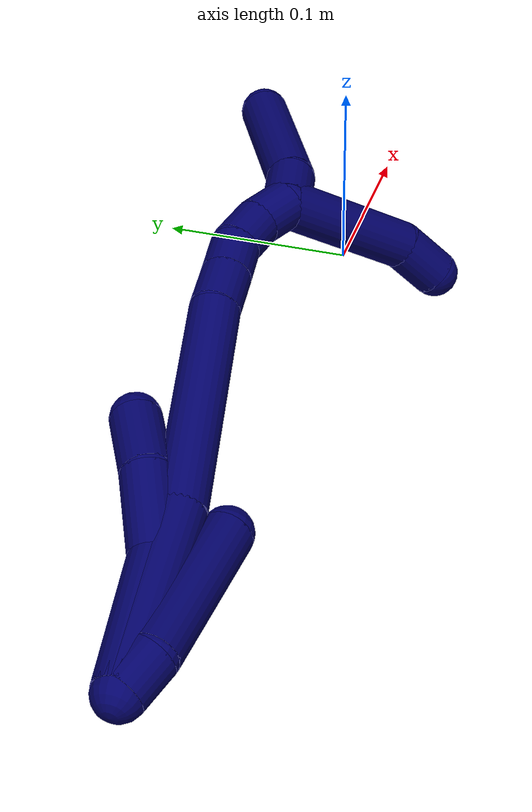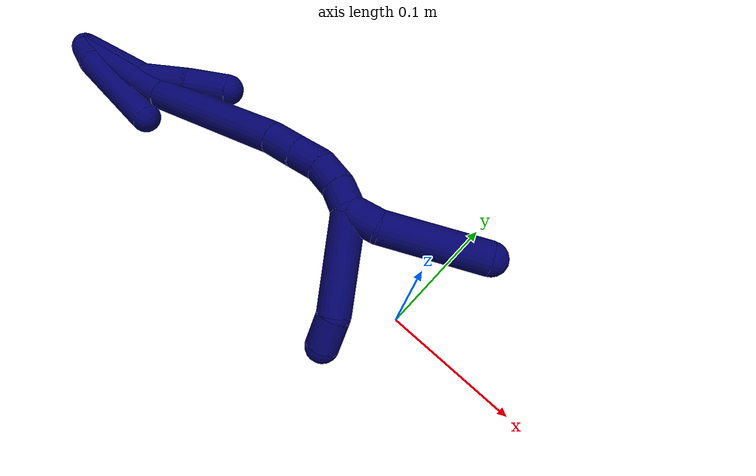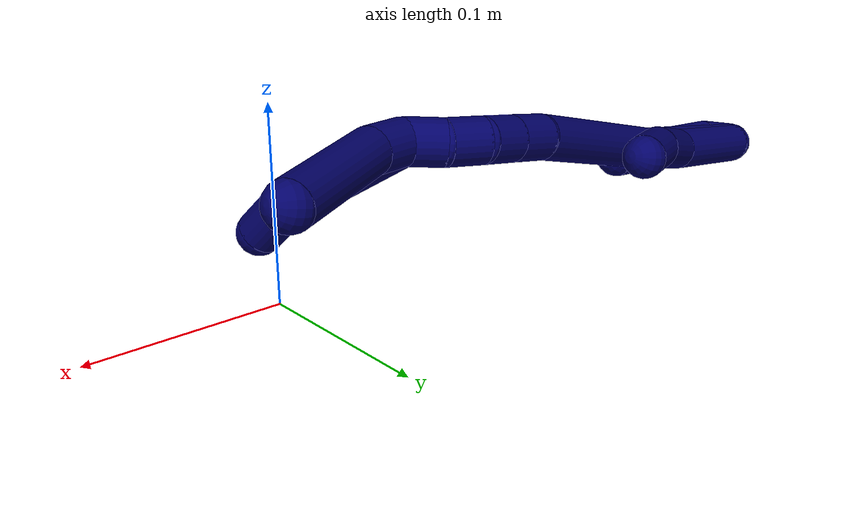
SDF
<sdf version="1.7">
 <world name="default">
  <model name="7">
   <static>0</static>
   <link name="7">
    <collision name="collision-cylinder-e_1_2_8">
     <pose>0.004215 0.001929 -0.034962 -3.08649 0.119792 -2.27999</pose>
     <geometry><cylinder><radius>0.0125</radius><length>0.070535</length></cylinder></geometry>
     <surface>
      <friction><ode><mu>1.16</mu><mu2>1.16</mu2><slip1>0</slip1><slip2>0</slip2></ode></friction>
      <contact><ode><kp>1e+06</kp><kd>1</kd><max_vel>0</max_vel><min_depth>0.001</min_depth></ode></contact>
     </surface>
    </collision>
    <visual name="visual-cylinder-e_1_2_8">
     <pose>0.004215 0.001929 -0.034962 -3.08649 0.119792 -2.27999</pose>
     <geometry><cylinder><radius>0.0125</radius><length>0.070535</length></cylinder></geometry>
     <material><ambient>0.003922 0 0.403922 1</ambient></material>
    </visual>
    <collision name="collision-cylinder-e_2_8_9">
     <pose>0.017588 0.002914 -0.090334 3.09543 0.421384 2.92652</pose>
     <geometry><cylinder><radius>0.0125</radius><length>0.044782</length></cylinder></geometry>
     <surface>
      <friction><ode><mu>1.16</mu><mu2>1.16</mu2><slip1>0</slip1><slip2>0</slip2></ode></friction>
      <contact><ode><kp>1e+06</kp><kd>1</kd><max_vel>0</max_vel><min_depth>0.001</min_depth></ode></contact>
     </surface>
    </collision>
    <visual name="visual-cylinder-e_2_8_9">
     <pose>0.017588 0.002914 -0.090334 3.09543 0.421384 2.92652</pose>
     <geometry><cylinder><radius>0.0125</radius><length>0.044782</length></cylinder></geometry>
     <material><ambient>0.003922 0 0.403922 1</ambient></material>
    </visual>
    <collision name="collision-cylinder-e_3_9_6">
     <pose>0.034594 0.003999 -0.126074 -3.01006 0.469644 -2.60431</pose>
     <geometry><cylinder><radius>0.0125</radius><length>0.034683</length></cylinder></geometry>
     <surface>
      <friction><ode><mu>1.16</mu><mu2>1.16</mu2><slip1>0</slip1><slip2>0</slip2></ode></friction>
      <contact><ode><kp>1e+06</kp><kd>1</kd><max_vel>0</max_vel><min_depth>0.001</min_depth></ode></contact>
     </surface>
    </collision>
    <visual name="visual-cylinder-e_3_9_6">
     <pose>0.034594 0.003999 -0.126074 -3.01006 0.469644 -2.60431</pose>
     <geometry><cylinder><radius>0.0125</radius><length>0.034683</length></cylinder></geometry>
     <material><ambient>0.003922 0 0.403922 1</ambient></material>
    </visual>
    <collision name="collision-cylinder-e_1_2_10">
     <pose>-0.003509 -0.000524 -0.010418 3.09136 -0.324531 -2.83706</pose>
     <geometry><cylinder><radius>0.0125</radius><length>0.022011</length></cylinder></geometry>
     <surface>
      <friction><ode><mu>1.16</mu><mu2>1.16</mu2><slip1>0</slip1><slip2>0</slip2></ode></friction>
      <contact><ode><kp>1e+06</kp><kd>1</kd><max_vel>0</max_vel><min_depth>0.001</min_depth></ode></contact>
     </surface>
    </collision>
    <visual name="visual-cylinder-e_1_2_10">
     <pose>-0.003509 -0.000524 -0.010418 3.09136 -0.324531 -2.83706</pose>
     <geometry><cylinder><radius>0.0125</radius><length>0.022011</length></cylinder></geometry>
     <material><ambient>0.003922 0 0.403922 1</ambient></material>
    </visual>
    <collision name="collision-cylinder-e_2_10_5">
     <pose>-0.011336 0.00482 -0.059144 -2.9896 -0.110941 1.26019</pose>
     <geometry><cylinder><radius>0.0125</radius><length>0.077989</length></cylinder></geometry>
     <surface>
      <friction><ode><mu>1.16</mu><mu2>1.16</mu2><slip1>0</slip1><slip2>0</slip2></ode></friction>
      <contact><ode><kp>1e+06</kp><kd>1</kd><max_vel>0</max_vel><min_depth>0.001</min_depth></ode></contact>
     </surface>
    </collision>
    <visual name="visual-cylinder-e_2_10_5">
     <pose>-0.011336 0.00482 -0.059144 -2.9896 -0.110941 1.26019</pose>
     <geometry><cylinder><radius>0.0125</radius><length>0.077989</length></cylinder></geometry>
     <material><ambient>0.003922 0 0.403922 1</ambient></material>
    </visual>
    <collision name="collision-cylinder-e_1_2_11">
     <pose>0.003193 0.001871 -0.04864 -3.10314 0.065497 -2.08005</pose>
     <geometry><cylinder><radius>0.0125</radius><length>0.09756</length></cylinder></geometry>
     <surface>
      <friction><ode><mu>1.16</mu><mu2>1.16</mu2><slip1>0</slip1><slip2>0</slip2></ode></friction>
      <contact><ode><kp>1e+06</kp><kd>1</kd><max_vel>0</max_vel><min_depth>0.001</min_depth></ode></contact>
     </surface>
    </collision>
    <visual name="visual-cylinder-e_1_2_11">
     <pose>0.003193 0.001871 -0.04864 -3.10314 0.065497 -2.08005</pose>
     <geometry><cylinder><radius>0.0125</radius><length>0.09756</length></cylinder></geometry>
     <material><ambient>0.003922 0 0.403922 1</ambient></material>
    </visual>
    <collision name="collision-cylinder-e_2_11_12">
     <pose>0.016607 0.000204 -0.153598 3.07884 0.17919 2.46933</pose>
     <geometry><cylinder><radius>0.0125</radius><length>0.114696</length></cylinder></geometry>
     <surface>
      <friction><ode><mu>1.16</mu><mu2>1.16</mu2><slip1>0</slip1><slip2>0</slip2></ode></friction>
      <contact><ode><kp>1e+06</kp><kd>1</kd><max_vel>0</max_vel><min_depth>0.001</min_depth></ode></contact>
     </surface>
    </collision>
    <visual name="visual-cylinder-e_2_11_12">
     <pose>0.016607 0.000204 -0.153598 3.07884 0.17919 2.46933</pose>
     <geometry><cylinder><radius>0.0125</radius><length>0.114696</length></cylinder></geometry>
     <material><ambient>0.003922 0 0.403922 1</ambient></material>
    </visual>
    <collision name="collision-cylinder-e_3_12_13">
     <pose>0.027739 -0.002871 -0.22172 -3.10229 0.077008 -2.19814</pose>
     <geometry><cylinder><radius>0.0125</radius><length>0.023695</length></cylinder></geometry>
     <surface>
      <friction><ode><mu>1.16</mu><mu2>1.16</mu2><slip1>0</slip1><slip2>0</slip2></ode></friction>
      <contact><ode><kp>1e+06</kp><kd>1</kd><max_vel>0</max_vel><min_depth>0.001</min_depth></ode></contact>
     </surface>
    </collision>
    <visual name="visual-cylinder-e_3_12_13">
     <pose>0.027739 -0.002871 -0.22172 -3.10229 0.077008 -2.19814</pose>
     <geometry><cylinder><radius>0.0125</radius><length>0.023695</length></cylinder></geometry>
     <material><ambient>0.003922 0 0.403922 1</ambient></material>
    </visual>
    <collision name="collision-cylinder-e_4_13_14">
     <pose>0.029634 -0.001941 -0.24432 -3.09843 0.090737 -2.25401</pose>
     <geometry><cylinder><radius>0.0125</radius><length>0.021703</length></cylinder></geometry>
     <surface>
      <friction><ode><mu>1.16</mu><mu2>1.16</mu2><slip1>0</slip1><slip2>0</slip2></ode></friction>
      <contact><ode><kp>1e+06</kp><kd>1</kd><max_vel>0</max_vel><min_depth>0.001</min_depth></ode></contact>
     </surface>
    </collision>
    <visual name="visual-cylinder-e_4_13_14">
     <pose>0.029634 -0.001941 -0.24432 -3.09843 0.090737 -2.25401</pose>
     <geometry><cylinder><radius>0.0125</radius><length>0.021703</length></cylinder></geometry>
     <material><ambient>0.003922 0 0.403922 1</ambient></material>
    </visual>
    <collision name="collision-cylinder-e_5_14_15">
     <pose>0.028129 -0.00062 -0.265585 -3.06015 -0.232618 2.4705</pose>
     <geometry><cylinder><radius>0.0125</radius><length>0.021588</length></cylinder></geometry>
     <surface>
      <friction><ode><mu>1.16</mu><mu2>1.16</mu2><slip1>0</slip1><slip2>0</slip2></ode></friction>
      <contact><ode><kp>1e+06</kp><kd>1</kd><max_vel>0</max_vel><min_depth>0.001</min_depth></ode></contact>
     </surface>
    </collision>
    <visual name="visual-cylinder-e_5_14_15">
     <pose>0.028129 -0.00062 -0.265585 -3.06015 -0.232618 2.4705</pose>
     <geometry><cylinder><radius>0.0125</radius><length>0.021588</length></cylinder></geometry>
     <material><ambient>0.003922 0 0.403922 1</ambient></material>
    </visual>
    <collision name="collision-cylinder-e_6_15_1">
     <pose>0.020625 0.000434 -0.285138 -3.11965 -0.504357 3.05647</pose>
     <geometry><cylinder><radius>0.0125</radius><length>0.020758</length></cylinder></geometry>
     <surface>
      <friction><ode><mu>1.16</mu><mu2>1.16</mu2><slip1>0</slip1><slip2>0</slip2></ode></friction>
      <contact><ode><kp>1e+06</kp><kd>1</kd><max_vel>0</max_vel><min_depth>0.001</min_depth></ode></contact>
     </surface>
    </collision>
    <visual name="visual-cylinder-e_6_15_1">
     <pose>0.020625 0.000434 -0.285138 -3.11965 -0.504357 3.05647</pose>
     <geometry><cylinder><radius>0.0125</radius><length>0.020758</length></cylinder></geometry>
     <material><ambient>0.003922 0 0.403922 1</ambient></material>
    </visual>
    <collision name="collision-cylinder-e_1_1_16">
     <pose>-0.012955 0.019176 -0.308536 -2.22819 -0.883935 1.53315</pose>
     <geometry><cylinder><radius>0.0125</radius><length>0.073883</length></cylinder></geometry>
     <surface>
      <friction><ode><mu>1.16</mu><mu2>1.16</mu2><slip1>0</slip1><slip2>0</slip2></ode></friction>
      <contact><ode><kp>1e+06</kp><kd>1</kd><max_vel>0</max_vel><min_depth>0.001</min_depth></ode></contact>
     </surface>
    </collision>
    <visual name="visual-cylinder-e_1_1_16">
     <pose>-0.012955 0.019176 -0.308536 -2.22819 -0.883935 1.53315</pose>
     <geometry><cylinder><radius>0.0125</radius><length>0.073883</length></cylinder></geometry>
     <material><ambient>0.003922 0 0.403922 1</ambient></material>
    </visual>
    <collision name="collision-cylinder-e_2_16_4">
     <pose>-0.051381 0.04618 -0.324154 -1.72361 -0.855875 0.97746</pose>
     <geometry><cylinder><radius>0.0125</radius><length>0.026117</length></cylinder></geometry>
     <surface>
      <friction><ode><mu>1.16</mu><mu2>1.16</mu2><slip1>0</slip1><slip2>0</slip2></ode></friction>
      <contact><ode><kp>1e+06</kp><kd>1</kd><max_vel>0</max_vel><min_depth>0.001</min_depth></ode></contact>
     </surface>
    </collision>
    <visual name="visual-cylinder-e_2_16_4">
     <pose>-0.051381 0.04618 -0.324154 -1.72361 -0.855875 0.97746</pose>
     <geometry><cylinder><radius>0.0125</radius><length>0.026117</length></cylinder></geometry>
     <material><ambient>0.003922 0 0.403922 1</ambient></material>
    </visual>
    <collision name="collision-cylinder-e_1_1_17">
     <pose>0.017669 0.00282 -0.305678 -2.953 0.174734 -1.49412</pose>
     <geometry><cylinder><radius>0.0125</radius><length>0.023687</length></cylinder></geometry>
     <surface>
      <friction><ode><mu>1.16</mu><mu2>1.16</mu2><slip1>0</slip1><slip2>0</slip2></ode></friction>
      <contact><ode><kp>1e+06</kp><kd>1</kd><max_vel>0</max_vel><min_depth>0.001</min_depth></ode></contact>
     </surface>
    </collision>
    <visual name="visual-cylinder-e_1_1_17">
     <pose>0.017669 0.00282 -0.305678 -2.953 0.174734 -1.49412</pose>
     <geometry><cylinder><radius>0.0125</radius><length>0.023687</length></cylinder></geometry>
     <material><ambient>0.003922 0 0.403922 1</ambient></material>
    </visual>
    <collision name="collision-cylinder-e_2_17_3">
     <pose>0.036115 0.015166 -0.350061 -2.84232 0.443916 -1.96367</pose>
     <geometry><cylinder><radius>0.0125</radius><length>0.076313</length></cylinder></geometry>
     <surface>
      <friction><ode><mu>1.16</mu><mu2>1.16</mu2><slip1>0</slip1><slip2>0</slip2></ode></friction>
      <contact><ode><kp>1e+06</kp><kd>1</kd><max_vel>0</max_vel><min_depth>0.001</min_depth></ode></contact>
     </surface>
    </collision>
    <visual name="visual-cylinder-e_2_17_3">
     <pose>0.036115 0.015166 -0.350061 -2.84232 0.443916 -1.96367</pose>
     <geometry><cylinder><radius>0.0125</radius><length>0.076313</length></cylinder></geometry>
     <material><ambient>0.003922 0 0.403922 1</ambient></material>
    </visual>
    <collision name="collision-sphere-3">
     <pose>0.052503 0.025325 -0.382988 0 -0 0</pose>
     <geometry><sphere><radius>0.0125</radius></sphere></geometry>
     <surface>
      <friction><ode><mu>1.16</mu><mu2>1.16</mu2><slip1>0</slip1><slip2>0</slip2></ode></friction>
      <contact><ode><kp>1e+06</kp><kd>1</kd><max_vel>0</max_vel><min_depth>0.001</min_depth></ode></contact>
     </surface>
    </collision>
    <visual name="visual-sphere-3">
     <pose>0.052503 0.025325 -0.382988 0 -0 0</pose>
     <geometry><sphere><radius>0.0125</radius></sphere></geometry>
     <material><ambient>0.003922 0 0.403922 1</ambient></material>
    </visual>
    <collision name="collision-sphere-17">
     <pose>0.019728 0.005006 -0.317135 0 -0 0</pose>
     <geometry><sphere><radius>0.0125</radius></sphere></geometry>
     <surface>
      <friction><ode><mu>1.16</mu><mu2>1.16</mu2><slip1>0</slip1><slip2>0</slip2></ode></friction>
      <contact><ode><kp>1e+06</kp><kd>1</kd><max_vel>0</max_vel><min_depth>0.001</min_depth></ode></contact>
     </surface>
    </collision>
    <visual name="visual-sphere-17">
     <pose>0.019728 0.005006 -0.317135 0 -0 0</pose>
     <geometry><sphere><radius>0.0125</radius></sphere></geometry>
     <material><ambient>0.003922 0 0.403922 1</ambient></material>
    </visual>
    <collision name="collision-sphere-4">
     <pose>-0.061242 0.054641 -0.325457 0 -0 0</pose>
     <geometry><sphere><radius>0.0125</radius></sphere></geometry>
     <surface>
      <friction><ode><mu>1.16</mu><mu2>1.16</mu2><slip1>0</slip1><slip2>0</slip2></ode></friction>
      <contact><ode><kp>1e+06</kp><kd>1</kd><max_vel>0</max_vel><min_depth>0.001</min_depth></ode></contact>
     </surface>
    </collision>
    <visual name="visual-sphere-4">
     <pose>-0.061242 0.054641 -0.325457 0 -0 0</pose>
     <geometry><sphere><radius>0.0125</radius></sphere></geometry>
     <material><ambient>0.003922 0 0.403922 1</ambient></material>
    </visual>
    <collision name="collision-sphere-16">
     <pose>-0.04152 0.037719 -0.322851 0 -0 0</pose>
     <geometry><sphere><radius>0.0125</radius></sphere></geometry>
     <surface>
      <friction><ode><mu>1.16</mu><mu2>1.16</mu2><slip1>0</slip1><slip2>0</slip2></ode></friction>
      <contact><ode><kp>1e+06</kp><kd>1</kd><max_vel>0</max_vel><min_depth>0.001</min_depth></ode></contact>
     </surface>
    </collision>
    <visual name="visual-sphere-16">
     <pose>-0.04152 0.037719 -0.322851 0 -0 0</pose>
     <geometry><sphere><radius>0.0125</radius></sphere></geometry>
     <material><ambient>0.003922 0 0.403922 1</ambient></material>
    </visual>
    <collision name="collision-sphere-1">
     <pose>0.01561 0.000633 -0.294222 0 -0 0</pose>
     <geometry><sphere><radius>0.0125</radius></sphere></geometry>
     <surface>
      <friction><ode><mu>1.16</mu><mu2>1.16</mu2><slip1>0</slip1><slip2>0</slip2></ode></friction>
      <contact><ode><kp>1e+06</kp><kd>1</kd><max_vel>0</max_vel><min_depth>0.001</min_depth></ode></contact>
     </surface>
    </collision>
    <visual name="visual-sphere-1">
     <pose>0.01561 0.000633 -0.294222 0 -0 0</pose>
     <geometry><sphere><radius>0.0125</radius></sphere></geometry>
     <material><ambient>0.003922 0 0.403922 1</ambient></material>
    </visual>
    <collision name="collision-sphere-15">
     <pose>0.025641 0.000234 -0.276054 0 -0 0</pose>
     <geometry><sphere><radius>0.0125</radius></sphere></geometry>
     <surface>
      <friction><ode><mu>1.16</mu><mu2>1.16</mu2><slip1>0</slip1><slip2>0</slip2></ode></friction>
      <contact><ode><kp>1e+06</kp><kd>1</kd><max_vel>0</max_vel><min_depth>0.001</min_depth></ode></contact>
     </surface>
    </collision>
    <visual name="visual-sphere-15">
     <pose>0.025641 0.000234 -0.276054 0 -0 0</pose>
     <geometry><sphere><radius>0.0125</radius></sphere></geometry>
     <material><ambient>0.003922 0 0.403922 1</ambient></material>
    </visual>
    <collision name="collision-sphere-14">
     <pose>0.030617 -0.001474 -0.255117 0 -0 0</pose>
     <geometry><sphere><radius>0.0125</radius></sphere></geometry>
     <surface>
      <friction><ode><mu>1.16</mu><mu2>1.16</mu2><slip1>0</slip1><slip2>0</slip2></ode></friction>
      <contact><ode><kp>1e+06</kp><kd>1</kd><max_vel>0</max_vel><min_depth>0.001</min_depth></ode></contact>
     </surface>
    </collision>
    <visual name="visual-sphere-14">
     <pose>0.030617 -0.001474 -0.255117 0 -0 0</pose>
     <geometry><sphere><radius>0.0125</radius></sphere></geometry>
     <material><ambient>0.003922 0 0.403922 1</ambient></material>
    </visual>
    <collision name="collision-sphere-13">
     <pose>0.028651 -0.002407 -0.233523 0 -0 0</pose>
     <geometry><sphere><radius>0.0125</radius></sphere></geometry>
     <surface>
      <friction><ode><mu>1.16</mu><mu2>1.16</mu2><slip1>0</slip1><slip2>0</slip2></ode></friction>
      <contact><ode><kp>1e+06</kp><kd>1</kd><max_vel>0</max_vel><min_depth>0.001</min_depth></ode></contact>
     </surface>
    </collision>
    <visual name="visual-sphere-13">
     <pose>0.028651 -0.002407 -0.233523 0 -0 0</pose>
     <geometry><sphere><radius>0.0125</radius></sphere></geometry>
     <material><ambient>0.003922 0 0.403922 1</ambient></material>
    </visual>
    <collision name="collision-sphere-12">
     <pose>0.026828 -0.003335 -0.209917 0 -0 0</pose>
     <geometry><sphere><radius>0.0125</radius></sphere></geometry>
     <surface>
      <friction><ode><mu>1.16</mu><mu2>1.16</mu2><slip1>0</slip1><slip2>0</slip2></ode></friction>
      <contact><ode><kp>1e+06</kp><kd>1</kd><max_vel>0</max_vel><min_depth>0.001</min_depth></ode></contact>
     </surface>
    </collision>
    <visual name="visual-sphere-12">
     <pose>0.026828 -0.003335 -0.209917 0 -0 0</pose>
     <geometry><sphere><radius>0.0125</radius></sphere></geometry>
     <material><ambient>0.003922 0 0.403922 1</ambient></material>
    </visual>
    <collision name="collision-sphere-11">
     <pose>0.006385 0.003743 -0.097279 0 -0 0</pose>
     <geometry><sphere><radius>0.0125</radius></sphere></geometry>
     <surface>
      <friction><ode><mu>1.16</mu><mu2>1.16</mu2><slip1>0</slip1><slip2>0</slip2></ode></friction>
      <contact><ode><kp>1e+06</kp><kd>1</kd><max_vel>0</max_vel><min_depth>0.001</min_depth></ode></contact>
     </surface>
    </collision>
    <visual name="visual-sphere-11">
     <pose>0.006385 0.003743 -0.097279 0 -0 0</pose>
     <geometry><sphere><radius>0.0125</radius></sphere></geometry>
     <material><ambient>0.003922 0 0.403922 1</ambient></material>
    </visual>
    <collision name="collision-sphere-8">
     <pose>0.008429 0.003857 -0.069923 0 -0 0</pose>
     <geometry><sphere><radius>0.0125</radius></sphere></geometry>
     <surface>
      <friction><ode><mu>1.16</mu><mu2>1.16</mu2><slip1>0</slip1><slip2>0</slip2></ode></friction>
      <contact><ode><kp>1e+06</kp><kd>1</kd><max_vel>0</max_vel><min_depth>0.001</min_depth></ode></contact>
     </surface>
    </collision>
    <visual name="visual-sphere-8">
     <pose>0.008429 0.003857 -0.069923 0 -0 0</pose>
     <geometry><sphere><radius>0.0125</radius></sphere></geometry>
     <material><ambient>0.003922 0 0.403922 1</ambient></material>
    </visual>
    <collision name="collision-sphere-2">
     <geometry><sphere><radius>0.0125</radius></sphere></geometry>
     <surface>
      <friction><ode><mu>1.16</mu><mu2>1.16</mu2><slip1>0</slip1><slip2>0</slip2></ode></friction>
      <contact><ode><kp>1e+06</kp><kd>1</kd><max_vel>0</max_vel><min_depth>0.001</min_depth></ode></contact>
     </surface>
    </collision>
    <visual name="visual-sphere-2">
     <geometry><sphere><radius>0.0125</radius></sphere></geometry>
     <material><ambient>0.003922 0 0.403922 1</ambient></material>
    </visual>
    <collision name="collision-sphere-9">
     <pose>0.026746 0.001971 -0.110744 0 -0 0</pose>
     <geometry><sphere><radius>0.0125</radius></sphere></geometry>
     <surface>
      <friction><ode><mu>1.16</mu><mu2>1.16</mu2><slip1>0</slip1><slip2>0</slip2></ode></friction>
      <contact><ode><kp>1e+06</kp><kd>1</kd><max_vel>0</max_vel><min_depth>0.001</min_depth></ode></contact>
     </surface>
    </collision>
    <visual name="visual-sphere-9">
     <pose>0.026746 0.001971 -0.110744 0 -0 0</pose>
     <geometry><sphere><radius>0.0125</radius></sphere></geometry>
     <material><ambient>0.003922 0 0.403922 1</ambient></material>
    </visual>
    <collision name="collision-sphere-6">
     <pose>0.042443 0.006028 -0.141405 0 -0 0</pose>
     <geometry><sphere><radius>0.0125</radius></sphere></geometry>
     <surface>
      <friction><ode><mu>1.16</mu><mu2>1.16</mu2><slip1>0</slip1><slip2>0</slip2></ode></friction>
      <contact><ode><kp>1e+06</kp><kd>1</kd><max_vel>0</max_vel><min_depth>0.001</min_depth></ode></contact>
     </surface>
    </collision>
    <visual name="visual-sphere-6">
     <pose>0.042443 0.006028 -0.141405 0 -0 0</pose>
     <geometry><sphere><radius>0.0125</radius></sphere></geometry>
     <material><ambient>0.003922 0 0.403922 1</ambient></material>
    </visual>
    <collision name="collision-sphere-10">
     <pose>-0.007019 -0.001048 -0.020836 0 -0 0</pose>
     <geometry><sphere><radius>0.0125</radius></sphere></geometry>
     <surface>
      <friction><ode><mu>1.16</mu><mu2>1.16</mu2><slip1>0</slip1><slip2>0</slip2></ode></friction>
      <contact><ode><kp>1e+06</kp><kd>1</kd><max_vel>0</max_vel><min_depth>0.001</min_depth></ode></contact>
     </surface>
    </collision>
    <visual name="visual-sphere-10">
     <pose>-0.007019 -0.001048 -0.020836 0 -0 0</pose>
     <geometry><sphere><radius>0.0125</radius></sphere></geometry>
     <material><ambient>0.003922 0 0.403922 1</ambient></material>
    </visual>
    <collision name="collision-sphere-5">
     <pose>-0.015653 0.010688 -0.097452 0 -0 0</pose>
     <geometry><sphere><radius>0.0125</radius></sphere></geometry>
     <surface>
      <friction><ode><mu>1.16</mu><mu2>1.16</mu2><slip1>0</slip1><slip2>0</slip2></ode></friction>
      <contact><ode><kp>1e+06</kp><kd>1</kd><max_vel>0</max_vel><min_depth>0.001</min_depth></ode></contact>
     </surface>
    </collision>
    <visual name="visual-sphere-5">
     <pose>-0.015653 0.010688 -0.097452 0 -0 0</pose>
     <geometry><sphere><radius>0.0125</radius></sphere></geometry>
     <material><ambient>0.003922 0 0.403922 1</ambient></material>
    </visual>
    <inertial>
     <pose>0.009001 0.006277 -0.167351 0 -0 0</pose>
     <mass>0.75</mass>
     <inertia>
      <ixx>-0.000166</ixx>
      <ixy>0</ixy>
      <ixz>0</ixz>
      <iyy>0.000232</iyy>
      <iyz>0</iyz>
      <izz>-0.000105</izz>
     </inertia>
    </inertial>
   </link>
   <pose>-0.35536 -0.002401 0.012326 -1.76982 -0.131141 1.59507</pose>
  </model>
 </world>
</sdf>
